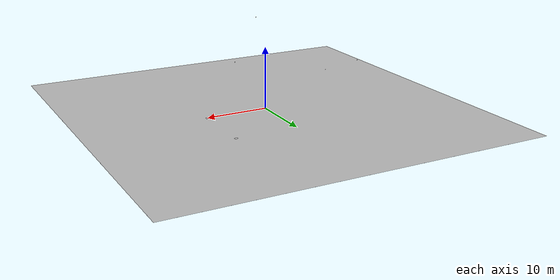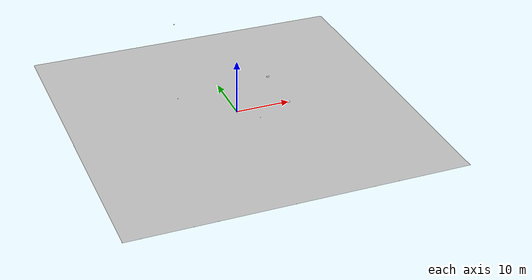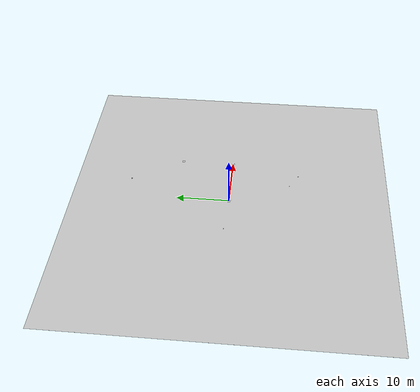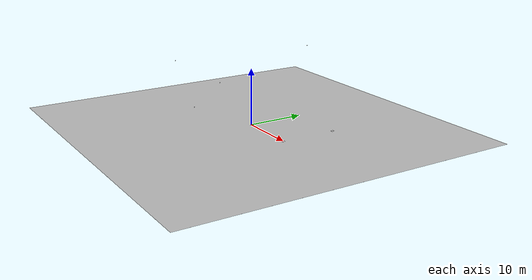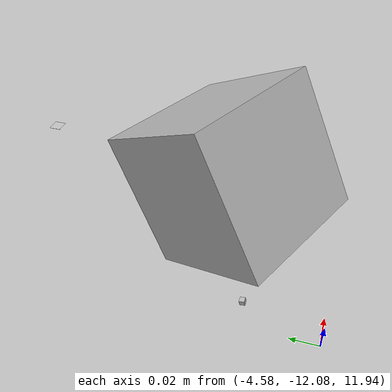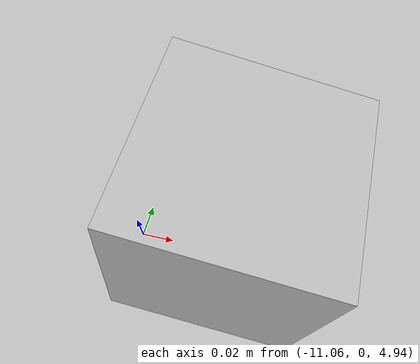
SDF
<?xml version="1.0" ?>
<?xml-model href="http://sdformat.org/schemas/root.xsd" schematypens="http://www.w3.org/2001/XMLSchema"?>
<sdf version="1.4">
  <world name="default">
    <include>
      <uri>model://scale_plane30</uri>
    </include>
    <include>
      <uri>model://sun</uri>
    </include>

    <include>
      <uri>model://flat_marker</uri>
      <name>cone_00</name>
      <pose>10.0 0.0 0.0  0 0 0</pose>
      <static>true</static>
    </include>
    <include>
      <uri>model://flat_marker</uri>
      <name>cone_01</name>
      <pose>10.0 10.0 0.0  0 0 0</pose>
      <static>true</static>
    </include>
    <include>
      <uri>model://flat_marker</uri>
      <name>cone_02</name>
      <pose>0.0 0.0 0.0  0 0 0</pose>
      <static>true</static>
    </include>

    <model name="camera1">
    <link name="link">
      <gravity>0</gravity>
      <pose>-11 0 5 0 0.17 0</pose> <!-- place a bit higher -->
      <inertial>
        <mass>0.1</mass>
      </inertial>
      <collision name="collision">
        <geometry>
          <box>
            <size>0.1 0.1 0.1</size>
          </box>
        </geometry>
      </collision>
      <visual name="visual">
        <geometry>
          <box>
            <size>0.1 0.1 0.1</size>
          </box>
        </geometry>
      </visual>
      <sensor name="camera1" type="camera">
        <camera>
          <horizontal_fov>1.047</horizontal_fov>
          <image>
            <width>1720</width>
            <height>1080</height>
          </image>
          <clip>
            <near>0.1</near>
            <far>100</far>
          </clip>
          <save enabled="true">
            <path>/tmp/cam1</path>
          </save>
        </camera>
        <always_on>1</always_on>
        <update_rate>15</update_rate>
        <visualize>true</visualize>
      </sensor>
    </link>
    </model>

    <model name="camera2">
    <link name="link">
      <gravity>0</gravity>
      <pose>-6.2 16.0 11 0 0.45 -0.7854</pose> <!-- nice far away distance -->
      <inertial>
        <mass>0.1</mass>
      </inertial>
      <collision name="collision">
        <geometry>
          <box>
            <size>0.1 0.1 0.1</size>
          </box>
        </geometry>
      </collision>
      <visual name="visual">
        <geometry>
          <box>
            <size>0.1 0.1 0.1</size>
          </box>
        </geometry>
      </visual>
      <sensor name="camera2" type="camera">
        <camera>
          <horizontal_fov>1.047</horizontal_fov>
          <image>
            <width>1720</width>
            <height>1080</height>
          </image>
          <clip>
            <near>0.1</near>
            <far>100</far>
          </clip>
          <save enabled="true">
            <path>/tmp/cam2</path>
          </save>
        </camera>
        <always_on>1</always_on>
        <update_rate>15</update_rate>
        <visualize>true</visualize>
      </sensor>
    </link>
    </model>

    <model name="camera3">
    <link name="link">
      <gravity>0</gravity>
      <pose>0 -11 5 0 0.17 1.5708</pose> <!-- place a bit higher -->
      <inertial>
        <mass>0.1</mass>
      </inertial>
      <collision name="collision">
        <geometry>
          <box>
            <size>0.1 0.1 0.1</size>
          </box>
        </geometry>
      </collision>
      <visual name="visual">
        <geometry>
          <box>
            <size>0.1 0.1 0.1</size>
          </box>
        </geometry>
      </visual>
      <sensor name="camera3" type="camera">
        <camera>
          <horizontal_fov>1.047</horizontal_fov>
          <image>
            <width>1720</width>
            <height>1080</height>
          </image>
          <clip>
            <near>0.1</near>
            <far>100</far>
          </clip>
          <save enabled="true">
            <path>/tmp/cam3</path>
          </save>
        </camera>
        <always_on>1</always_on>
        <update_rate>15</update_rate>
        <visualize>true</visualize>
      </sensor>
    </link>
    </model>

    <model name="camera4">
    <link name="link">
      <gravity>0</gravity>
      <pose>-4.5 -12.0 12 0 0.5 1.1</pose> <!-- nice far away distance -->
      <!-- as in testing room at homeoffice -->
      <inertial>
        <mass>0.1</mass>
      </inertial>
      <collision name="collision">
        <geometry>
          <box>
            <size>0.1 0.1 0.1</size>
          </box>
        </geometry>
      </collision>
      <visual name="visual">
        <geometry>
          <box>
            <size>0.1 0.1 0.1</size>
          </box>
        </geometry>
      </visual>
      <sensor name="camera4" type="camera">
        <camera>
          <horizontal_fov>1.047</horizontal_fov>
          <image>
            <width>1720</width>
            <height>1080</height>
          </image>
          <clip>
            <near>0.1</near>
            <far>100</far>
          </clip>
          <save enabled="true">
            <path>/tmp/cam4</path>
          </save>
        </camera>
        <always_on>1</always_on>
        <update_rate>15</update_rate>
        <visualize>true</visualize>
      </sensor>
    </link>
    </model>

    <!-- Only one ROS interface plugin is required per world, as any other plugin can connect a Gazebo
         topic to a ROS topic (or vise versa). -->
    <plugin name="ros_interface_plugin" filename="librotors_gazebo_ros_interface_plugin.so"/>

    <!-- coordinate system {-->
    <spherical_coordinates>
      <surface_model>EARTH_WGS84</surface_model>
      <latitude_deg>47.3667</latitude_deg>
      <longitude_deg>8.5500</longitude_deg>
      <elevation>500.0</elevation>
      <heading_deg>0</heading_deg>
    </spherical_coordinates>

    <!-- physics engine {-->
    <physics name="default_physics" default="0"  type='ode'>
      <ode>
        <solver>
          <type>quick</type>
          <iters>1000</iters>
          <sor>1.3</sor>
        </solver>
        <constraints>
          <cfm>0</cfm>
          <erp>0.2</erp>
          <contact_max_correcting_vel>100</contact_max_correcting_vel>
          <contact_surface_layer>0.001</contact_surface_layer>
        </constraints>
      </ode>
      <max_step_size>0.001</max_step_size>
      <real_time_factor>1</real_time_factor>
      <real_time_update_rate>1000</real_time_update_rate>
      <magnetic_field>6.0e-06 2.3e-05 -4.2e-05</magnetic_field>
      <gravity>0 0 -9.8</gravity>
    </physics>

    <!-- turn off shadows {-->
    <scene>
      <shadows>false</shadows>
    </scene>

  </world>
</sdf>

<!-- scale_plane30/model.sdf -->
<sdf version="1.5">
  <model name="scale_plane30">
    <static>true</static>
    <link name="link">
      <collision name="collision">
        <geometry>
          <box>
            <size>60 60 .001</size>
          </box>
        </geometry>
      </collision>
      <visual name="visual">
        <cast_shadows>false</cast_shadows>
        <geometry>
          <box>
            <size>60 60 .001</size>
          </box>
        </geometry>
        <material>
          <script>
            <uri>model://scale_plane30/materials/scripts</uri>
            <uri>model://scale_plane30/materials/textures</uri>
            <name>vrc/scale</name>
          </script>
        </material>
      </visual>
    </link>
  </model>
</sdf>

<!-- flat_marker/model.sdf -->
<sdf version="1.5">
  <model name="flat_marker">
    <static>true</static>
    <link name="link">
      <collision name="collision">
        <geometry>
          <box>
            <size>0.5 0.5 .005</size>
          </box>
        </geometry>
      </collision>
      <visual name="visual">
        <cast_shadows>false</cast_shadows>
        <geometry>
          <box>
            <size>0.5 0.5 .005</size>
          </box>
        </geometry>
        <material>
          <script>
            <uri>model://flat_marker/materials/scripts</uri>
            <uri>model://flat_marker/materials/textures</uri>
            <name>vrc/flat_marker</name>
          </script>
        </material>
      </visual>
    </link>
  </model>
</sdf>
